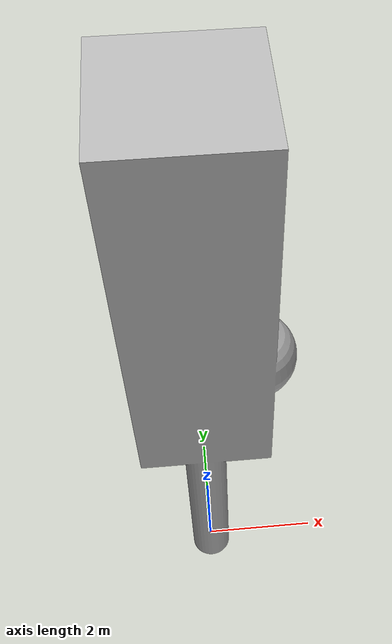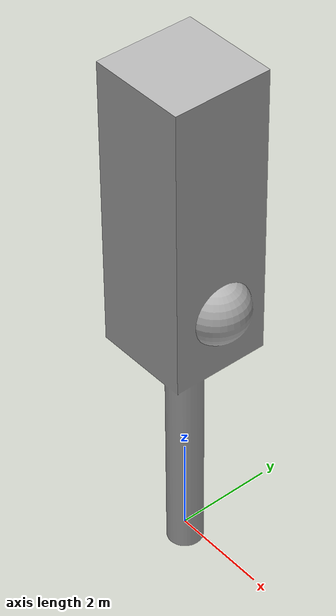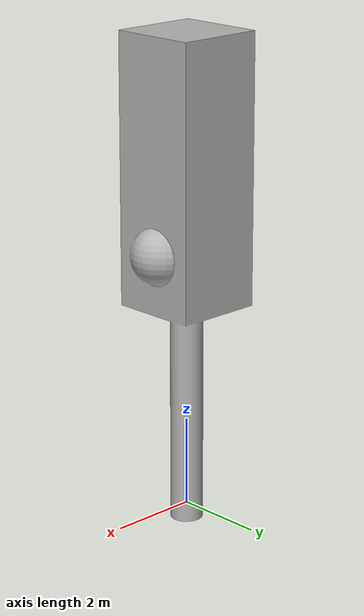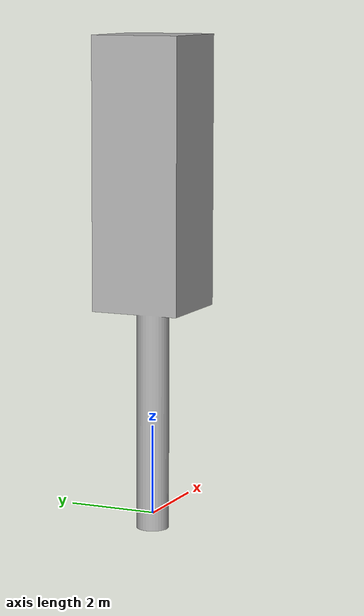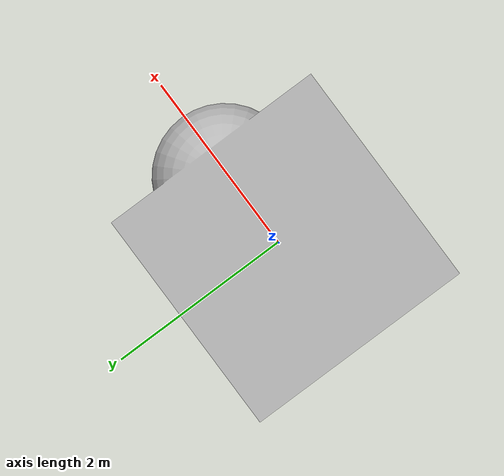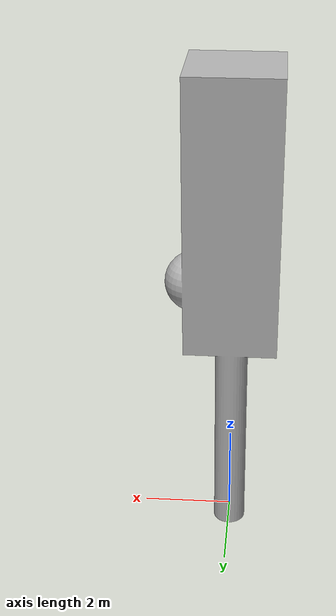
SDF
<?xml version="1.0" ?>
<sdf version="1.6">
  <model name="traffic_green">
    <static>true</static>
    <link name="link">
        <pose>0 0 0 1.570796 0 0</pose>
      <collision name="collision">
        <pose>0 0 0 0 0 0</pose>
        <geometry>
          <mesh>
            <scale>2 2 2</scale>
            <uri>model://traffic_green/meshes/traffic_green.obj</uri>
          </mesh>
        </geometry>
      </collision>
      <visual name="visual">
        <pose>0 0 0 0 0 0</pose>
        <geometry>
          <mesh>
            <scale>2 2 2</scale>
            <uri>model://traffic_green/meshes/traffic_green.obj</uri>
          </mesh>
        </geometry>
        <material>
            <ambient>0.300000012 0.300000012 0.300000012 1</ambient>
            <diffuse>0.699999988 0.699999988 0.699999988 1</diffuse>
            <specular>1 1 1 1</specular>
          </material>
      </visual>
    </link>
  </model>
</sdf>
